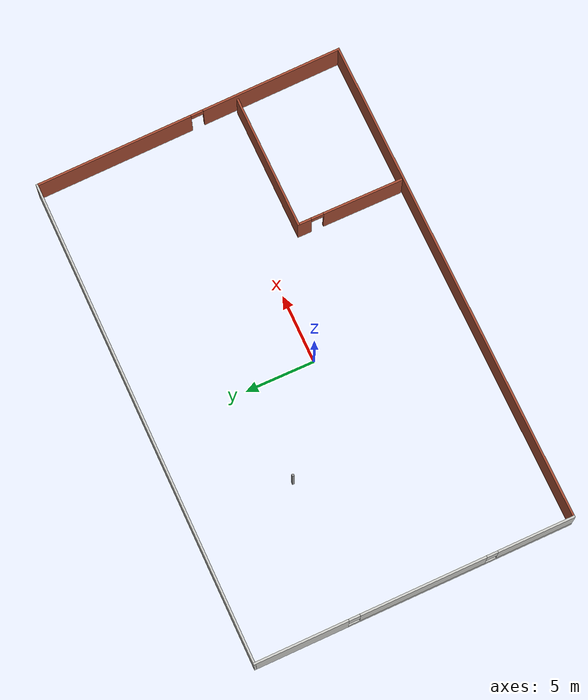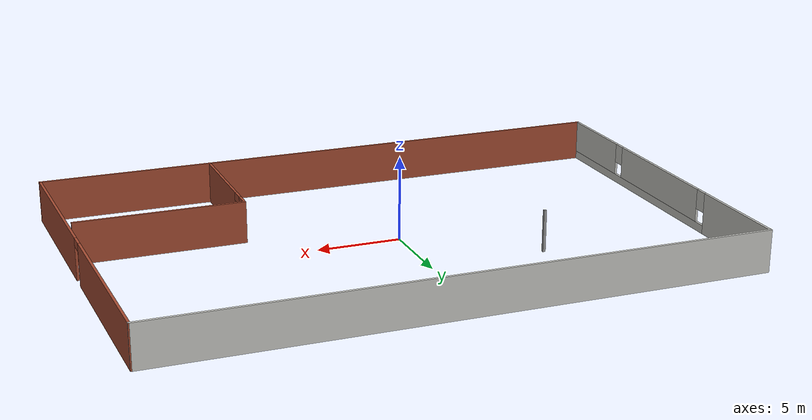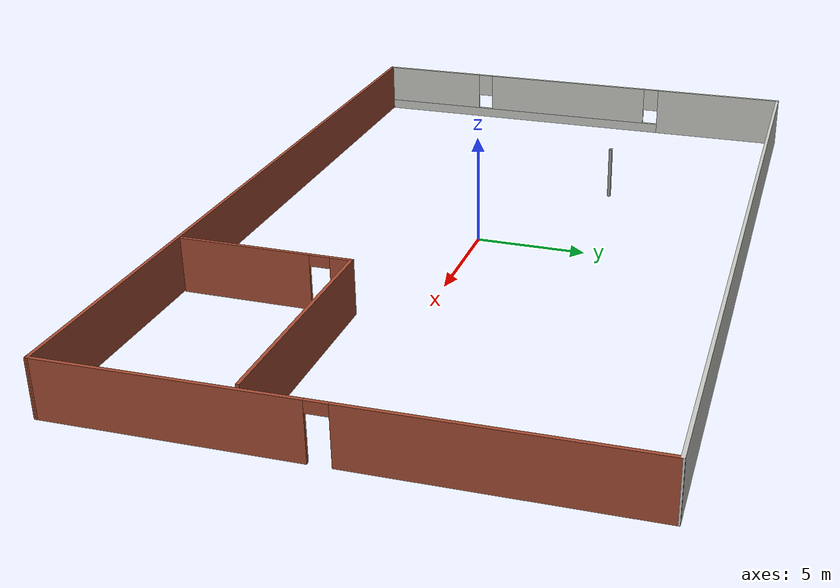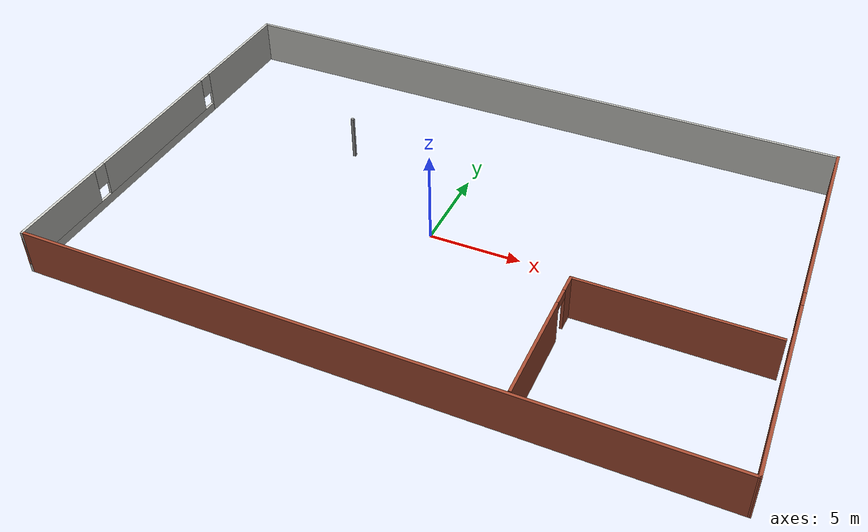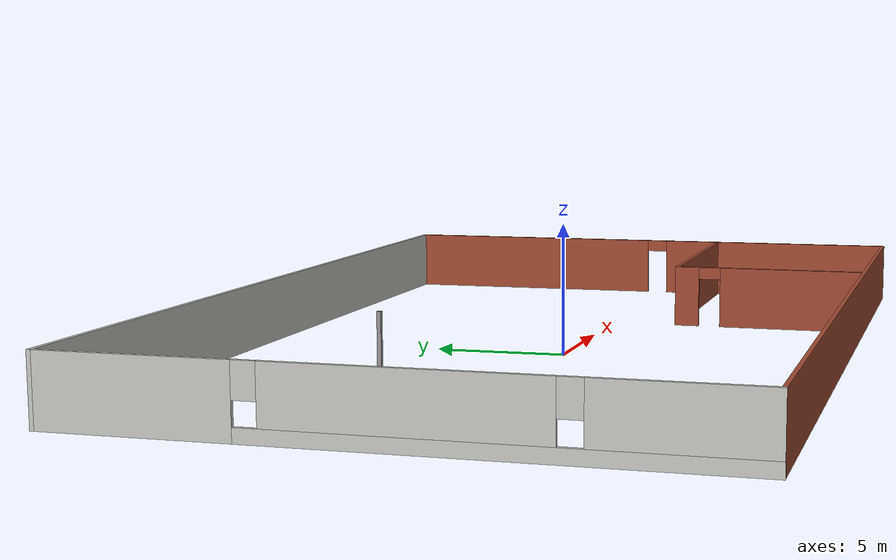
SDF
<?xml version='1.0'?>
<sdf version='1.6'>
  <model name='last'>
    <pose frame=''>0.922385 0.748484 0 0 -0 0</pose>
    <link name='Wall_12'>
      <collision name='Wall_12_Collision'>
        <geometry>
          <box>
            <size>0.16 0.15 2.5</size>
          </box>
        </geometry>
        <pose frame=''>0 0 1.25 0 -0 0</pose>
      </collision>
      <visual name='Wall_12_Visual'>
        <pose frame=''>0 0 1.25 0 -0 0</pose>
        <geometry>
          <box>
            <size>0.16 0.15 2.5</size>
          </box>
        </geometry>
        <material>
          <script>
            <uri>file://media/materials/scripts/gazebo.material</uri>
            <name>Gazebo/Grey</name>
          </script>
          <ambient>0 0 0 0</ambient>
        </material>
        <meta>
          <layer>0</layer>
        </meta>
      </visual>
      <pose frame=''>-7.87465 3.99776 0 0 -0 0</pose>
    </link>
    <link name='Wall_13'>
      <collision name='Wall_13_Collision'>
        <geometry>
          <box>
            <size>10 0.15 2.5</size>
          </box>
        </geometry>
        <pose frame=''>0 0 1.25 0 -0 0</pose>
      </collision>
      <visual name='Wall_13_Visual'>
        <pose frame=''>0 0 1.25 0 -0 0</pose>
        <geometry>
          <box>
            <size>10 0.15 2.5</size>
          </box>
        </geometry>
        <material>
          <script>
            <uri>file://media/materials/scripts/gazebo.material</uri>
            <name>Gazebo/Bricks</name>
          </script>
          <ambient>1 1 1 1</ambient>
        </material>
        <meta>
          <layer>0</layer>
        </meta>
      </visual>
      <pose frame=''>12.482 -3.50189 0 0 -0 3.14159</pose>
    </link>
    <link name='Wall_14'>
      <pose frame=''>7.55696 -7.30189 0 0 0 -1.5708</pose>
      <visual name='Wall_14_Visual_0'>
        <pose frame=''>-3.37085 0 1.25 0 -0 0</pose>
        <geometry>
          <box>
            <size>1.0083 0.15 2.5</size>
          </box>
        </geometry>
        <material>
          <script>
            <uri>file://media/materials/scripts/gazebo.material</uri>
            <name>Gazebo/Bricks</name>
          </script>
          <ambient>1 1 1 1</ambient>
        </material>
        <meta>
          <layer>0</layer>
        </meta>
      </visual>
      <collision name='Wall_14_Collision_0'>
        <geometry>
          <box>
            <size>1.0083 0.15 2.5</size>
          </box>
        </geometry>
        <pose frame=''>-3.37085 0 1.25 0 -0 0</pose>
      </collision>
      <visual name='Wall_14_Visual_1'>
        <pose frame=''>0.95415 0 1.25 0 -0 0</pose>
        <geometry>
          <box>
            <size>5.8417 0.15 2.5</size>
          </box>
        </geometry>
        <material>
          <script>
            <uri>file://media/materials/scripts/gazebo.material</uri>
            <name>Gazebo/Bricks</name>
          </script>
          <ambient>1 1 1 1</ambient>
        </material>
        <meta>
          <layer>0</layer>
        </meta>
      </visual>
      <collision name='Wall_14_Collision_1'>
        <geometry>
          <box>
            <size>5.8417 0.15 2.5</size>
          </box>
        </geometry>
        <pose frame=''>0.95415 0 1.25 0 -0 0</pose>
      </collision>
      <visual name='Wall_14_Visual_2'>
        <pose frame=''>-2.4167 0 2.25 0 -0 0</pose>
        <geometry>
          <box>
            <size>0.9 0.15 0.5</size>
          </box>
        </geometry>
        <material>
          <script>
            <uri>file://media/materials/scripts/gazebo.material</uri>
            <name>Gazebo/Bricks</name>
          </script>
          <ambient>1 1 1 1</ambient>
        </material>
        <meta>
          <layer>0</layer>
        </meta>
      </visual>
      <collision name='Wall_14_Collision_2'>
        <geometry>
          <box>
            <size>0.9 0.15 0.5</size>
          </box>
        </geometry>
        <pose frame=''>-2.4167 0 2.25 0 -0 0</pose>
      </collision>
    </link>
    <link name='Wall_4'>
      <collision name='Wall_4_Collision'>
        <geometry>
          <box>
            <size>35.5 0.15 2.5</size>
          </box>
        </geometry>
        <pose frame=''>0 0 1.25 0 -0 0</pose>
      </collision>
      <visual name='Wall_4_Visual'>
        <pose frame=''>0 0 1.25 0 -0 0</pose>
        <geometry>
          <box>
            <size>35.5 0.15 2.5</size>
          </box>
        </geometry>
        <material>
          <script>
            <uri>file://media/materials/scripts/gazebo.material</uri>
            <name>Gazebo/CeilingTiled</name>
          </script>
          <ambient>1 1 1 1</ambient>
        </material>
        <meta>
          <layer>0</layer>
        </meta>
      </visual>
      <pose frame=''>-0.25082 11.3 0 0 -0 3.14159</pose>
    </link>
    <link name='Wall_5'>
      <pose frame=''>-17.9258 0 0 0 0 -1.5708</pose>
      <visual name='Wall_5_Visual_0'>
        <pose frame=''>-8.04234 0 1.25 0 -0 0</pose>
        <geometry>
          <box>
            <size>6.66531 0.15 2.5</size>
          </box>
        </geometry>
        <material>
          <script>
            <uri>file://media/materials/scripts/gazebo.material</uri>
            <name>Gazebo/CeilingTiled</name>
          </script>
          <ambient>1 1 1 1</ambient>
        </material>
        <meta>
          <layer>0</layer>
        </meta>
      </visual>
      <collision name='Wall_5_Collision_0'>
        <geometry>
          <box>
            <size>6.66531 0.15 2.5</size>
          </box>
        </geometry>
        <pose frame=''>-8.04234 0 1.25 0 -0 0</pose>
      </collision>
      <visual name='Wall_5_Visual_1'>
        <pose frame=''>3.33266 0 0.25 0 -0 0</pose>
        <geometry>
          <box>
            <size>16.0847 0.15 0.5</size>
          </box>
        </geometry>
        <material>
          <script>
            <uri>file://media/materials/scripts/gazebo.material</uri>
            <name>Gazebo/CeilingTiled</name>
          </script>
          <ambient>1 1 1 1</ambient>
        </material>
        <meta>
          <layer>0</layer>
        </meta>
      </visual>
      <collision name='Wall_5_Collision_1'>
        <geometry>
          <box>
            <size>16.0847 0.15 0.5</size>
          </box>
        </geometry>
        <pose frame=''>3.33266 0 0.25 0 -0 0</pose>
      </collision>
      <visual name='Wall_5_Visual_2'>
        <pose frame=''>0.572548 0 1.5 0 -0 0</pose>
        <geometry>
          <box>
            <size>8.96447 0.15 2</size>
          </box>
        </geometry>
        <material>
          <script>
            <uri>file://media/materials/scripts/gazebo.material</uri>
            <name>Gazebo/CeilingTiled</name>
          </script>
          <ambient>1 1 1 1</ambient>
        </material>
        <meta>
          <layer>0</layer>
        </meta>
      </visual>
      <collision name='Wall_5_Collision_2'>
        <geometry>
          <box>
            <size>8.96447 0.15 2</size>
          </box>
        </geometry>
        <pose frame=''>0.572548 0 1.5 0 -0 0</pose>
      </collision>
      <visual name='Wall_5_Visual_3'>
        <pose frame=''>8.61489 0 1.5 0 -0 0</pose>
        <geometry>
          <box>
            <size>5.52022 0.15 2</size>
          </box>
        </geometry>
        <material>
          <script>
            <uri>file://media/materials/scripts/gazebo.material</uri>
            <name>Gazebo/CeilingTiled</name>
          </script>
          <ambient>1 1 1 1</ambient>
        </material>
        <meta>
          <layer>0</layer>
        </meta>
      </visual>
      <collision name='Wall_5_Collision_3'>
        <geometry>
          <box>
            <size>5.52022 0.15 2</size>
          </box>
        </geometry>
        <pose frame=''>8.61489 0 1.5 0 -0 0</pose>
      </collision>
      <visual name='Wall_5_Visual_4'>
        <pose frame=''>-4.30969 0 1.9 0 -0 0</pose>
        <geometry>
          <box>
            <size>0.8 0.15 1.2</size>
          </box>
        </geometry>
        <material>
          <script>
            <uri>file://media/materials/scripts/gazebo.material</uri>
            <name>Gazebo/CeilingTiled</name>
          </script>
          <ambient>1 1 1 1</ambient>
        </material>
        <meta>
          <layer>0</layer>
        </meta>
      </visual>
      <collision name='Wall_5_Collision_4'>
        <geometry>
          <box>
            <size>0.8 0.15 1.2</size>
          </box>
        </geometry>
        <pose frame=''>-4.30969 0 1.9 0 -0 0</pose>
      </collision>
      <visual name='Wall_5_Visual_5'>
        <pose frame=''>5.45479 0 1.9 0 -0 0</pose>
        <geometry>
          <box>
            <size>0.8 0.15 1.2</size>
          </box>
        </geometry>
        <material>
          <script>
            <uri>file://media/materials/scripts/gazebo.material</uri>
            <name>Gazebo/CeilingTiled</name>
          </script>
          <ambient>1 1 1 1</ambient>
        </material>
        <meta>
          <layer>0</layer>
        </meta>
      </visual>
      <collision name='Wall_5_Collision_5'>
        <geometry>
          <box>
            <size>0.8 0.15 1.2</size>
          </box>
        </geometry>
        <pose frame=''>5.45479 0 1.9 0 -0 0</pose>
      </collision>
    </link>
    <link name='Wall_6'>
      <collision name='Wall_6_Collision'>
        <geometry>
          <box>
            <size>36 0.15 2.5</size>
          </box>
        </geometry>
        <pose frame=''>0 0 1.25 0 -0 0</pose>
      </collision>
      <visual name='Wall_6_Visual'>
        <pose frame=''>0 0 1.25 0 -0 0</pose>
        <geometry>
          <box>
            <size>36 0.15 2.5</size>
          </box>
        </geometry>
        <material>
          <script>
            <uri>file://media/materials/scripts/gazebo.material</uri>
            <name>Gazebo/Bricks</name>
          </script>
          <ambient>1 1 1 1</ambient>
        </material>
        <meta>
          <layer>0</layer>
        </meta>
      </visual>
      <pose frame=''>-0.00082 -11.3 0 0 -0 0</pose>
    </link>
    <link name='Wall_7'>
      <pose frame=''>17.6742 0 0 0 -0 1.59292</pose>
      <visual name='Wall_7_Visual_0'>
        <pose frame=''>-6.20073 0 1.25 0 -0 0</pose>
        <geometry>
          <box>
            <size>10.3541 0.15 2.5</size>
          </box>
        </geometry>
        <material>
          <script>
            <uri>file://media/materials/scripts/gazebo.material</uri>
            <name>Gazebo/Bricks</name>
          </script>
          <ambient>1 1 1 1</ambient>
        </material>
        <meta>
          <layer>0</layer>
        </meta>
      </visual>
      <collision name='Wall_7_Collision_0'>
        <geometry>
          <box>
            <size>10.3541 0.15 2.5</size>
          </box>
        </geometry>
        <pose frame=''>-6.20073 0 1.25 0 -0 0</pose>
      </collision>
      <visual name='Wall_7_Visual_1'>
        <pose frame=''>5.62703 0 1.25 0 -0 0</pose>
        <geometry>
          <box>
            <size>11.5015 0.15 2.5</size>
          </box>
        </geometry>
        <material>
          <script>
            <uri>file://media/materials/scripts/gazebo.material</uri>
            <name>Gazebo/Bricks</name>
          </script>
          <ambient>1 1 1 1</ambient>
        </material>
        <meta>
          <layer>0</layer>
        </meta>
      </visual>
      <collision name='Wall_7_Collision_1'>
        <geometry>
          <box>
            <size>11.5015 0.15 2.5</size>
          </box>
        </geometry>
        <pose frame=''>5.62703 0 1.25 0 -0 0</pose>
      </collision>
      <visual name='Wall_7_Visual_2'>
        <pose frame=''>-0.573697 0 2.25 0 -0 0</pose>
        <geometry>
          <box>
            <size>0.9 0.15 0.5</size>
          </box>
        </geometry>
        <material>
          <script>
            <uri>file://media/materials/scripts/gazebo.material</uri>
            <name>Gazebo/Bricks</name>
          </script>
          <ambient>1 1 1 1</ambient>
        </material>
        <meta>
          <layer>0</layer>
        </meta>
      </visual>
      <collision name='Wall_7_Collision_2'>
        <geometry>
          <box>
            <size>0.9 0.15 0.5</size>
          </box>
        </geometry>
        <pose frame=''>-0.573697 0 2.25 0 -0 0</pose>
      </collision>
    </link>
    <static>1</static>
  </model>
</sdf>
